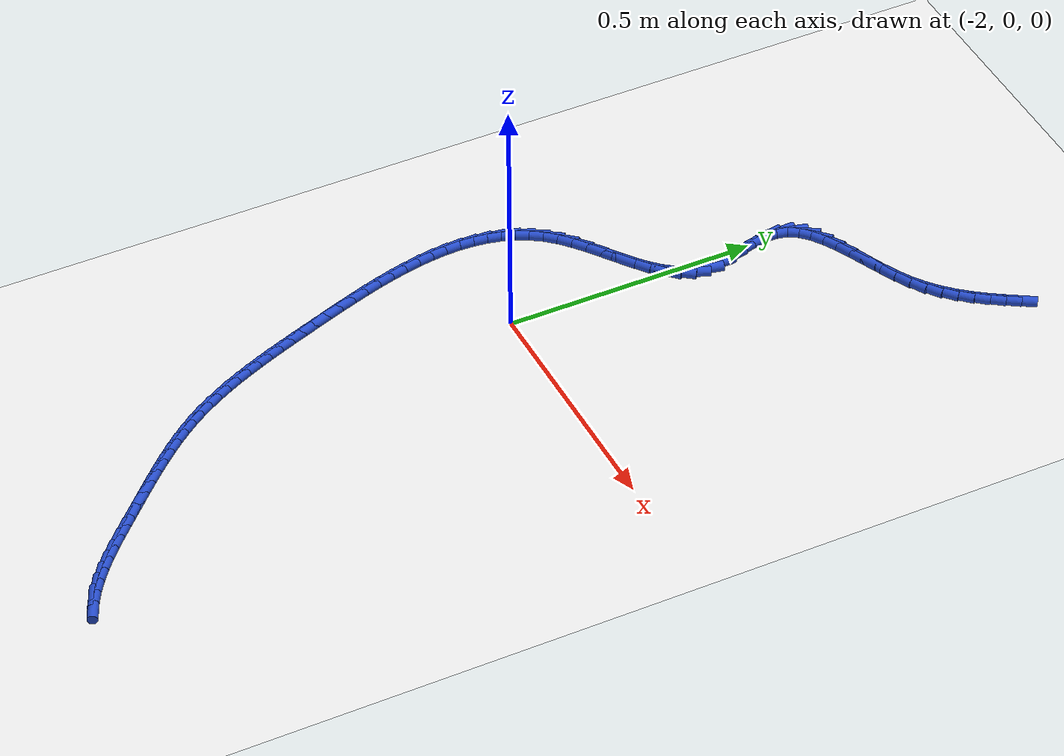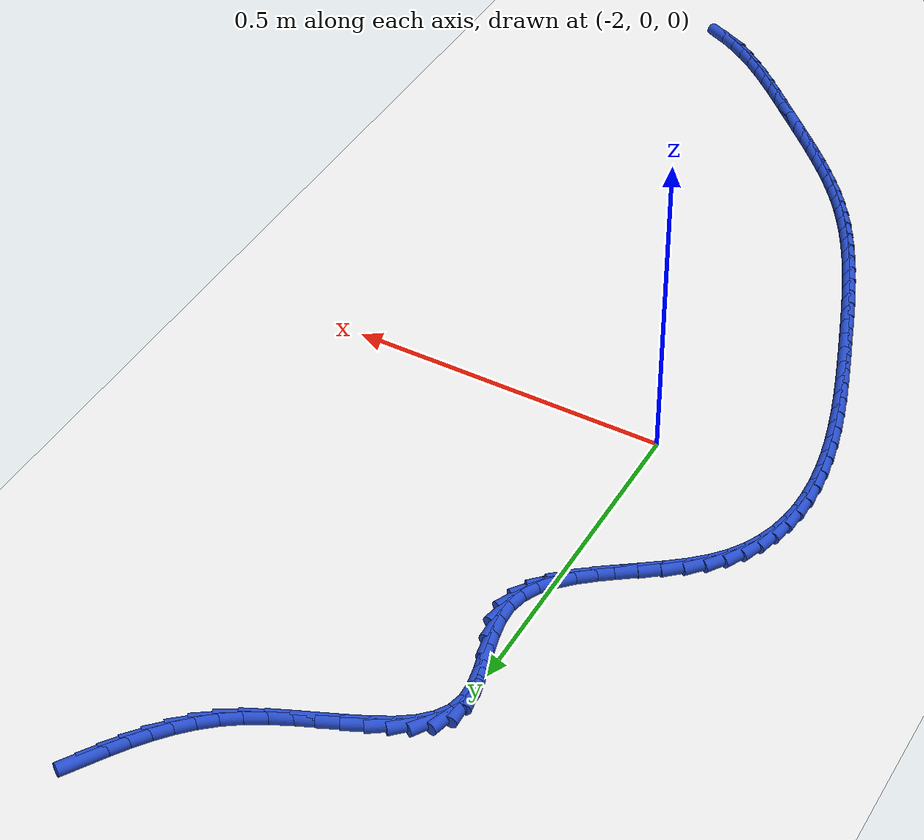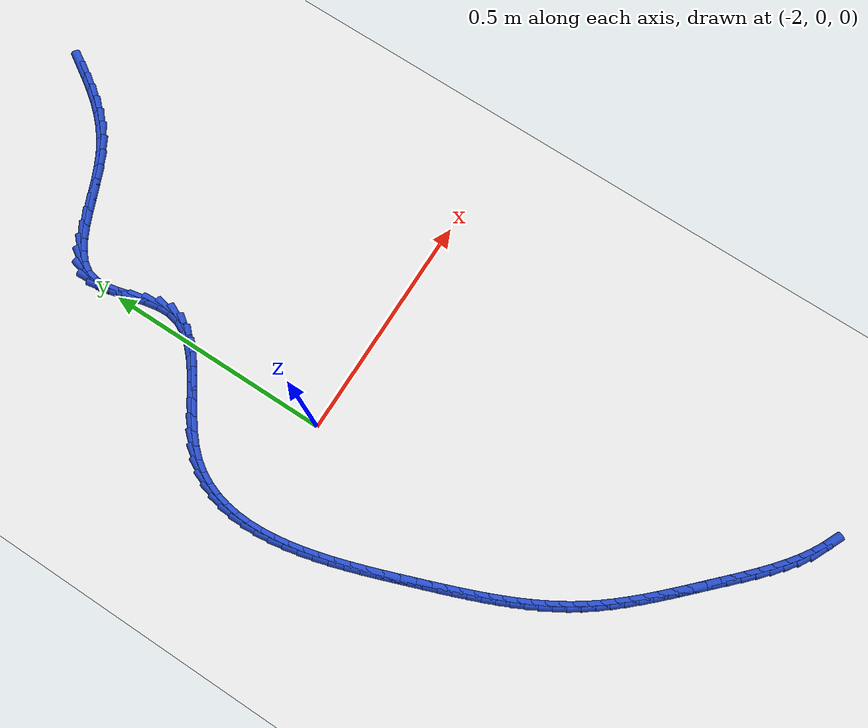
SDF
<sdf version="1.6">
 <world name="default">
  <model name="ground_plane">
   <static>1</static>
   <link name="link">
    <collision name="collision">
     <geometry><plane><normal>0 0 1</normal><size>100 100</size></plane></geometry>
     <surface><friction><ode><mu>100</mu><mu2>50</mu2></ode></friction></surface>
    </collision>
    <visual name="visual">
     <cast_shadows>0</cast_shadows>
     <geometry><plane><normal>0 0 1</normal><size>100 100</size></plane></geometry>
     <material>
      <script><uri>file://media/materials/scripts/gazebo.material</uri><name>Gazebo/WhiteGlow</name></script>
     </material>
    </visual>
   </link>
  </model>
  <model name="line">
   <link name="link_82">
    <pose>-1.6279180890156209 0.869579745719 0.01 0 1.57 1.011049204621194</pose>
    <collision name="collision">
     <geometry><cylinder><radius>0.01</radius><length>0.08</length></cylinder></geometry>
    </collision>
    <visual name="visual">
     <material>
      <script><name>Gazebo/Blue</name><uri>file://media/materials/scripts/gazebo.material</uri></script>
     </material>
     <geometry><cylinder><radius>0.01</radius><length>0.08</length></cylinder></geometry>
    </visual>
   </link>
   <link name="link_83">
    <pose>-1.6432467672207134 0.8451163817258963 0.01 0 1.57 0.9790400514282015</pose>
    <collision name="collision">
     <geometry><cylinder><radius>0.01</radius><length>0.08</length></cylinder></geometry>
    </collision>
    <visual name="visual">
     <material>
      <script><name>Gazebo/Blue</name><uri>file://media/materials/scripts/gazebo.material</uri></script>
     </material>
     <geometry><cylinder><radius>0.01</radius><length>0.08</length></cylinder></geometry>
    </visual>
   </link>
   <link name="link_84">
    <pose>-1.6593869749743249 0.821101869952232 0.01 0 1.57 0.9312530769918702</pose>
    <collision name="collision">
     <geometry><cylinder><radius>0.01</radius><length>0.08</length></cylinder></geometry>
    </collision>
    <visual name="visual">
     <material>
      <script><name>Gazebo/Blue</name><uri>file://media/materials/scripts/gazebo.material</uri></script>
     </material>
     <geometry><cylinder><radius>0.01</radius><length>0.08</length></cylinder></geometry>
    </visual>
   </link>
   <link name="link_85">
    <pose>-1.6767076726030397 0.797816170549223 0.01 0 1.57 0.8680049197908831</pose>
    <collision name="collision">
     <geometry><cylinder><radius>0.01</radius><length>0.08</length></cylinder></geometry>
    </collision>
    <visual name="visual">
     <material>
      <script><name>Gazebo/Blue</name><uri>file://media/materials/scripts/gazebo.material</uri></script>
     </material>
     <geometry><cylinder><radius>0.01</radius><length>0.08</length></cylinder></geometry>
    </visual>
   </link>
   <link name="link_86">
    <pose>-1.6955778204334413 0.7755392436680862 0.01 0 1.57 0.7901767619611942</pose>
    <collision name="collision">
     <geometry><cylinder><radius>0.01</radius><length>0.08</length></cylinder></geometry>
    </collision>
    <visual name="visual">
     <material>
      <script><name>Gazebo/Blue</name><uri>file://media/materials/scripts/gazebo.material</uri></script>
     </material>
     <geometry><cylinder><radius>0.01</radius><length>0.08</length></cylinder></geometry>
    </visual>
   </link>
   <link name="link_87">
    <pose>-1.7163663787921126 0.7545510494600375 0.01 0 1.57 0.6995667139545813</pose>
    <collision name="collision">
     <geometry><cylinder><radius>0.01</radius><length>0.08</length></cylinder></geometry>
    </collision>
    <visual name="visual">
     <material>
      <script><name>Gazebo/Blue</name><uri>file://media/materials/scripts/gazebo.material</uri></script>
     </material>
     <geometry><cylinder><radius>0.01</radius><length>0.08</length></cylinder></geometry>
    </visual>
   </link>
   <link name="link_88">
    <pose>-1.7394423080056378 0.7351315480762929 0.01 0 1.57 0.5991521676071688</pose>
    <collision name="collision">
     <geometry><cylinder><radius>0.01</radius><length>0.08</length></cylinder></geometry>
    </collision>
    <visual name="visual">
     <material>
      <script><name>Gazebo/Blue</name><uri>file://media/materials/scripts/gazebo.material</uri></script>
     </material>
     <geometry><cylinder><radius>0.01</radius><length>0.08</length></cylinder></geometry>
    </visual>
   </link>
   <link name="link_89">
    <pose>-1.765173363429295 0.7175599936609718 0.01 0 1.57 0.5044677012919855</pose>
    <collision name="collision">
     <geometry><cylinder><radius>0.01</radius><length>0.08</length></cylinder></geometry>
    </collision>
    <visual name="visual">
     <material>
      <script><name>Gazebo/Blue</name><uri>file://media/materials/scripts/gazebo.material</uri></script>
     </material>
     <geometry><cylinder><radius>0.01</radius><length>0.08</length></cylinder></geometry>
    </visual>
   </link>
   <link name="link_90">
    <pose>-1.7935483938738552 0.7018936344828248 0.01 0 1.57 0.44200977219773824</pose>
    <collision name="collision">
     <geometry><cylinder><radius>0.01</radius><length>0.08</length></cylinder></geometry>
    </collision>
    <visual name="visual">
     <material>
      <script><name>Gazebo/Blue</name><uri>file://media/materials/scripts/gazebo.material</uri></script>
     </material>
     <geometry><cylinder><radius>0.01</radius><length>0.08</length></cylinder></geometry>
    </visual>
   </link>
   <link name="link_91">
    <pose>-1.8236402483500371 0.6876530235742783 0.01 0 1.57 0.4102926782178785</pose>
    <collision name="collision">
     <geometry><cylinder><radius>0.01</radius><length>0.08</length></cylinder></geometry>
    </collision>
    <visual name="visual">
     <material>
      <script><name>Gazebo/Blue</name><uri>file://media/materials/scripts/gazebo.material</uri></script>
     </material>
     <geometry><cylinder><radius>0.01</radius><length>0.08</length></cylinder></geometry>
    </visual>
   </link>
   <link name="link_92">
    <pose>-1.8543860973522317 0.6742792183026068 0.01 0 1.57 0.40668284539883187</pose>
    <collision name="collision">
     <geometry><cylinder><radius>0.01</radius><length>0.08</length></cylinder></geometry>
    </collision>
    <visual name="visual">
     <material>
      <script><name>Gazebo/Blue</name><uri>file://media/materials/scripts/gazebo.material</uri></script>
     </material>
     <geometry><cylinder><radius>0.01</radius><length>0.08</length></cylinder></geometry>
    </visual>
   </link>
   <link name="link_93">
    <pose>-1.8847231113748313 0.6612132760350851 0.01 0 1.57 0.43225219540162824</pose>
    <collision name="collision">
     <geometry><cylinder><radius>0.01</radius><length>0.08</length></cylinder></geometry>
    </collision>
    <visual name="visual">
     <material>
      <script><name>Gazebo/Blue</name><uri>file://media/materials/scripts/gazebo.material</uri></script>
     </material>
     <geometry><cylinder><radius>0.01</radius><length>0.08</length></cylinder></geometry>
    </visual>
   </link>
   <link name="link_94">
    <pose>-1.9135884609122256 0.647896254138988 0.01 0 1.57 0.49243541087826104</pose>
    <collision name="collision">
     <geometry><cylinder><radius>0.01</radius><length>0.08</length></cylinder></geometry>
    </collision>
    <visual name="visual">
     <material>
      <script><name>Gazebo/Blue</name><uri>file://media/materials/scripts/gazebo.material</uri></script>
     </material>
     <geometry><cylinder><radius>0.01</radius><length>0.08</length></cylinder></geometry>
    </visual>
   </link>
   <link name="link_95">
    <pose>-1.939919316458808 0.6337692099815904 0.01 0 1.57 0.5982949726942012</pose>
    <collision name="collision">
     <geometry><cylinder><radius>0.01</radius><length>0.08</length></cylinder></geometry>
    </collision>
    <visual name="visual">
     <material>
      <script><name>Gazebo/Blue</name><uri>file://media/materials/scripts/gazebo.material</uri></script>
     </material>
     <geometry><cylinder><radius>0.01</radius><length>0.08</length></cylinder></geometry>
    </visual>
   </link>
   <link name="link_96">
    <pose>-1.962652848508969 0.6182732009301667 0.01 0 1.57 0.7671040932615691</pose>
    <collision name="collision">
     <geometry><cylinder><radius>0.01</radius><length>0.08</length></cylinder></geometry>
    </collision>
    <visual name="visual">
     <material>
      <script><name>Gazebo/Blue</name><uri>file://media/materials/scripts/gazebo.material</uri></script>
     </material>
     <geometry><cylinder><radius>0.01</radius><length>0.08</length></cylinder></geometry>
    </visual>
   </link>
   <link name="link_97">
    <pose>-1.9807262275571 0.600849284351992 0.01 0 1.57 1.0155930704207083</pose>
    <collision name="collision">
     <geometry><cylinder><radius>0.01</radius><length>0.08</length></cylinder></geometry>
    </collision>
    <visual name="visual">
     <material>
      <script><name>Gazebo/Blue</name><uri>file://media/materials/scripts/gazebo.material</uri></script>
     </material>
     <geometry><cylinder><radius>0.01</radius><length>0.08</length></cylinder></geometry>
    </visual>
   </link>
   <link name="link_98">
    <pose>-1.9930766240975926 0.5809385176143411 0.01 0 1.57 1.3324904883972646</pose>
    <collision name="collision">
     <geometry><cylinder><radius>0.01</radius><length>0.08</length></cylinder></geometry>
    </collision>
    <visual name="visual">
     <material>
      <script><name>Gazebo/Blue</name><uri>file://media/materials/scripts/gazebo.material</uri></script>
     </material>
     <geometry><cylinder><radius>0.01</radius><length>0.08</length></cylinder></geometry>
    </visual>
   </link>
   <link name="link_99">
    <pose>-1.998652090867722 0.5579868263235431 0.01 0 1.57 -1.5268364827842733</pose>
    <collision name="collision">
     <geometry><cylinder><radius>0.01</radius><length>0.08</length></cylinder></geometry>
    </collision>
    <visual name="visual">
     <material>
      <script><name>Gazebo/Blue</name><uri>file://media/materials/scripts/gazebo.material</uri></script>
     </material>
     <geometry><cylinder><radius>0.01</radius><length>0.08</length></cylinder></geometry>
    </visual>
   </link>
   <link name="link_100">
    <pose>-1.9975061031344952 0.5319346537316743 0.01 0 1.57 -1.3695810009826508</pose>
    <collision name="collision">
     <geometry><cylinder><radius>0.01</radius><length>0.08</length></cylinder></geometry>
    </collision>
    <visual name="visual">
     <material>
      <script><name>Gazebo/Blue</name><uri>file://media/materials/scripts/gazebo.material</uri></script>
     </material>
     <geometry><cylinder><radius>0.01</radius><length>0.08</length></cylinder></geometry>
    </visual>
   </link>
   <link name="link_101">
    <pose>-1.99173382849233 0.5036358068552858 0.01 0 1.57 -1.3041660278707365</pose>
    <collision name="collision">
     <geometry><cylinder><radius>0.01</radius><length>0.08</length></cylinder></geometry>
    </collision>
    <visual name="visual">
     <material>
      <script><name>Gazebo/Blue</name><uri>file://media/materials/scripts/gazebo.material</uri></script>
     </material>
     <geometry><cylinder><radius>0.01</radius><length>0.08</length></cylinder></geometry>
    </visual>
   </link>
   <link name="link_102">
    <pose>-1.9836509672510538 0.4740427493931471 0.01 0 1.57 -1.3072292698010541</pose>
    <collision name="collision">
     <geometry><cylinder><radius>0.01</radius><length>0.08</length></cylinder></geometry>
    </collision>
    <visual name="visual">
     <material>
      <script><name>Gazebo/Blue</name><uri>file://media/materials/scripts/gazebo.material</uri></script>
     </material>
     <geometry><cylinder><radius>0.01</radius><length>0.08</length></cylinder></geometry>
    </visual>
   </link>
   <link name="link_103">
    <pose>-1.9755732197204918 0.4441079450440279 0.01 0 1.57 -1.3769407790196884</pose>
    <collision name="collision">
     <geometry><cylinder><radius>0.01</radius><length>0.08</length></cylinder></geometry>
    </collision>
    <visual name="visual">
     <material>
      <script><name>Gazebo/Blue</name><uri>file://media/materials/scripts/gazebo.material</uri></script>
     </material>
     <geometry><cylinder><radius>0.01</radius><length>0.08</length></cylinder></geometry>
    </visual>
   </link>
   <link name="link_104">
    <pose>-1.969816286210471 0.4147838575066977 0.01 0 1.57 -1.5304586165356389</pose>
    <collision name="collision">
     <geometry><cylinder><radius>0.01</radius><length>0.08</length></cylinder></geometry>
    </collision>
    <visual name="visual">
     <material>
      <script><name>Gazebo/Blue</name><uri>file://media/materials/scripts/gazebo.material</uri></script>
     </material>
     <geometry><cylinder><radius>0.01</radius><length>0.08</length></cylinder></geometry>
    </visual>
   </link>
   <link name="link_105">
    <pose>-1.9686958670308168 0.387022950479927 0.01 0 1.57 1.3645613853543148</pose>
    <collision name="collision">
     <geometry><cylinder><radius>0.01</radius><length>0.08</length></cylinder></geometry>
    </collision>
    <visual name="visual">
     <material>
      <script><name>Gazebo/Blue</name><uri>file://media/materials/scripts/gazebo.material</uri></script>
     </material>
     <geometry><cylinder><radius>0.01</radius><length>0.08</length></cylinder></geometry>
    </visual>
   </link>
   <link name="link_106">
    <pose>-1.9740201502604877 0.36157341883219185 0.01 0 1.57 1.1173975946926331</pose>
    <collision name="collision">
     <geometry><cylinder><radius>0.01</radius><length>0.08</length></cylinder></geometry>
    </collision>
    <visual name="visual">
     <material>
      <script><name>Gazebo/Blue</name><uri>file://media/materials/scripts/gazebo.material</uri></script>
     </material>
     <geometry><cylinder><radius>0.01</radius><length>0.08</length></cylinder></geometry>
    </visual>
   </link>
   <link name="link_107">
    <pose>-1.9853671199275338 0.33828582158186304 0.01 0 1.57 0.9215506543724609</pose>
    <collision name="collision">
     <geometry><cylinder><radius>0.01</radius><length>0.08</length></cylinder></geometry>
    </collision>
    <visual name="visual">
     <material>
      <script><name>Gazebo/Blue</name><uri>file://media/materials/scripts/gazebo.material</uri></script>
     </material>
     <geometry><cylinder><radius>0.01</radius><length>0.08</length></cylinder></geometry>
    </visual>
   </link>
   <link name="link_108">
    <pose>-2.001702333135894 0.3167642217540728 0.01 0 1.57 0.7819993497353427</pose>
    <collision name="collision">
     <geometry><cylinder><radius>0.01</radius><length>0.08</length></cylinder></geometry>
    </collision>
    <visual name="visual">
     <material>
      <script><name>Gazebo/Blue</name><uri>file://media/materials/scripts/gazebo.material</uri></script>
     </material>
     <geometry><cylinder><radius>0.01</radius><length>0.08</length></cylinder></geometry>
    </visual>
   </link>
   <link name="link_109">
    <pose>-2.021991329824151 0.29661267546506287 0.01 0 1.57 0.6905833593760698</pose>
    <collision name="collision">
     <geometry><cylinder><radius>0.01</radius><length>0.08</length></cylinder></geometry>
    </collision>
    <visual name="visual">
     <material>
      <script><name>Gazebo/Blue</name><uri>file://media/materials/scripts/gazebo.material</uri></script>
     </material>
     <geometry><cylinder><radius>0.01</radius><length>0.08</length></cylinder></geometry>
    </visual>
   </link>
   <link name="link_110">
    <pose>-2.04519964993089 0.2774352388310743 0.01 0 1.57 0.637850507137567</pose>
    <collision name="collision">
     <geometry><cylinder><radius>0.01</radius><length>0.08</length></cylinder></geometry>
    </collision>
    <visual name="visual">
     <material>
      <script><name>Gazebo/Blue</name><uri>file://media/materials/scripts/gazebo.material</uri></script>
     </material>
     <geometry><cylinder><radius>0.01</radius><length>0.08</length></cylinder></geometry>
    </visual>
   </link>
   <link name="link_111">
    <pose>-2.0702928333946953 0.25883596796834824 0.01 0 1.57 0.6173316311956467</pose>
    <collision name="collision">
     <geometry><cylinder><radius>0.01</radius><length>0.08</length></cylinder></geometry>
    </collision>
    <visual name="visual">
     <material>
      <script><name>Gazebo/Blue</name><uri>file://media/materials/scripts/gazebo.material</uri></script>
     </material>
     <geometry><cylinder><radius>0.01</radius><length>0.08</length></cylinder></geometry>
    </visual>
   </link>
   <link name="link_112">
    <pose>-2.0962364201541503 0.24041891899312567 0.01 0 1.57 0.6261650329179839</pose>
    <collision name="collision">
     <geometry><cylinder><radius>0.01</radius><length>0.08</length></cylinder></geometry>
    </collision>
    <visual name="visual">
     <material>
      <script><name>Gazebo/Blue</name><uri>file://media/materials/scripts/gazebo.material</uri></script>
     </material>
     <geometry><cylinder><radius>0.01</radius><length>0.08</length></cylinder></geometry>
    </visual>
   </link>
   <link name="link_113">
    <pose>-2.1219959501478396 0.2217881480216483 0.01 0 1.57 0.6649155473846194</pose>
    <collision name="collision">
     <geometry><cylinder><radius>0.01</radius><length>0.08</length></cylinder></geometry>
    </collision>
    <visual name="visual">
     <material>
      <script><name>Gazebo/Blue</name><uri>file://media/materials/scripts/gazebo.material</uri></script>
     </material>
     <geometry><cylinder><radius>0.01</radius><length>0.08</length></cylinder></geometry>
    </visual>
   </link>
   <link name="link_114">
    <pose>-2.146536963314347 0.20254771117015716 0.01 0 1.57 0.7374266803353892</pose>
    <collision name="collision">
     <geometry><cylinder><radius>0.01</radius><length>0.08</length></cylinder></geometry>
    </collision>
    <visual name="visual">
     <material>
      <script><name>Gazebo/Blue</name><uri>file://media/materials/scripts/gazebo.material</uri></script>
     </material>
     <geometry><cylinder><radius>0.01</radius><length>0.08</length></cylinder></geometry>
    </visual>
   </link>
   <link name="link_115">
    <pose>-2.168824999592258 0.18230166455489308 0.01 0 1.57 0.8485494902345311</pose>
    <collision name="collision">
     <geometry><cylinder><radius>0.01</radius><length>0.08</length></cylinder></geometry>
    </collision>
    <visual name="visual">
     <material>
      <script><name>Gazebo/Blue</name><uri>file://media/materials/scripts/gazebo.material</uri></script>
     </material>
     <geometry><cylinder><radius>0.01</radius><length>0.08</length></cylinder></geometry>
    </visual>
   </link>
   <link name="link_116">
    <pose>-2.1878783864325877 0.16067591581489657 0.01 0 1.57 0.9785644876733143</pose>
    <collision name="collision">
     <geometry><cylinder><radius>0.01</radius><length>0.08</length></cylinder></geometry>
    </collision>
    <visual name="visual">
     <material>
      <script><name>Gazebo/Blue</name><uri>file://media/materials/scripts/gazebo.material</uri></script>
     </material>
     <geometry><cylinder><radius>0.01</radius><length>0.08</length></cylinder></geometry>
    </visual>
   </link>
   <link name="link_117">
    <pose>-2.2034135523251583 0.13758535326023874 0.01 0 1.57 1.106840789899906</pose>
    <collision name="collision">
     <geometry><cylinder><radius>0.01</radius><length>0.08</length></cylinder></geometry>
    </collision>
    <visual name="visual">
     <material>
      <script><name>Gazebo/Blue</name><uri>file://media/materials/scripts/gazebo.material</uri></script>
     </material>
     <geometry><cylinder><radius>0.01</radius><length>0.08</length></cylinder></geometry>
    </visual>
   </link>
   <link name="link_118">
    <pose>-2.2156409517980227 0.11314936851512554 0.01 0 1.57 1.2285654917621165</pose>
    <collision name="collision">
     <geometry><cylinder><radius>0.01</radius><length>0.08</length></cylinder></geometry>
    </collision>
    <visual name="visual">
     <material>
      <script><name>Gazebo/Blue</name><uri>file://media/materials/scripts/gazebo.material</uri></script>
     </material>
     <geometry><cylinder><radius>0.01</radius><length>0.08</length></cylinder></geometry>
    </visual>
   </link>
   <link name="link_119">
    <pose>-2.224781475984687 0.08749167346269238 0.01 0 1.57 1.3404465638724679</pose>
    <collision name="collision">
     <geometry><cylinder><radius>0.01</radius><length>0.08</length></cylinder></geometry>
    </collision>
    <visual name="visual">
     <material>
      <script><name>Gazebo/Blue</name><uri>file://media/materials/scripts/gazebo.material</uri></script>
     </material>
     <geometry><cylinder><radius>0.01</radius><length>0.08</length></cylinder></geometry>
    </visual>
   </link>
   <link name="link_120">
    <pose>-2.2310560160186563 0.06073597998607563 0.01 0 1.57 1.4406508251470882</pose>
    <collision name="collision">
     <geometry><cylinder><radius>0.01</radius><length>0.08</length></cylinder></geometry>
    </collision>
    <visual name="visual">
     <material>
      <script><name>Gazebo/Blue</name><uri>file://media/materials/scripts/gazebo.material</uri></script>
     </material>
     <geometry><cylinder><radius>0.01</radius><length>0.08</length></cylinder></geometry>
    </visual>
   </link>
   <link name="link_121">
    <pose>-2.2346854630334367 0.03300599996841083 0.01 0 1.57 1.528651187637639</pose>
    <collision name="collision">
     <geometry><cylinder><radius>0.01</radius><length>0.08</length></cylinder></geometry>
    </collision>
    <visual name="visual">
     <material>
      <script><name>Gazebo/Blue</name><uri>file://media/materials/scripts/gazebo.material</uri></script>
     </material>
     <geometry><cylinder><radius>0.01</radius><length>0.08</length></cylinder></geometry>
    </visual>
   </link>
   <link name="link_122">
    <pose>-2.2358907081625343 0.004425445292833721 0.01 0 1.57 -1.536754430792318</pose>
    <collision name="collision">
     <geometry><cylinder><radius>0.01</radius><length>0.08</length></cylinder></geometry>
    </collision>
    <visual name="visual">
     <material>
      <script><name>Gazebo/Blue</name><uri>file://media/materials/scripts/gazebo.material</uri></script>
     </material>
     <geometry><cylinder><radius>0.01</radius><length>0.08</length></cylinder></geometry>
    </visual>
   </link>
   <link name="link_123">
    <pose>-2.2348926425394535 -0.02488197215751997 0.01 0 1.57 -1.47147762716861</pose>
    <collision name="collision">
     <geometry><cylinder><radius>0.01</radius><length>0.08</length></cylinder></geometry>
    </collision>
    <visual name="visual">
     <material>
      <script><name>Gazebo/Blue</name><uri>file://media/materials/scripts/gazebo.material</uri></script>
     </material>
     <geometry><cylinder><radius>0.01</radius><length>0.08</length></cylinder></geometry>
    </visual>
   </link>
   <link name="link_124">
    <pose>-2.231912157297702 -0.05479254049951447 0.01 0 1.57 -1.416005968618529</pose>
    <collision name="collision">
     <geometry><cylinder><radius>0.01</radius><length>0.08</length></cylinder></geometry>
    </collision>
    <visual name="visual">
     <material>
      <script><name>Gazebo/Blue</name><uri>file://media/materials/scripts/gazebo.material</uri></script>
     </material>
     <geometry><cylinder><radius>0.01</radius><length>0.08</length></cylinder></geometry>
    </visual>
   </link>
   <link name="link_125">
    <pose>-2.227170143570784 -0.08518254785001489 0.01 0 1.57 -1.3692290806523615</pose>
    <collision name="collision">
     <geometry><cylinder><radius>0.01</radius><length>0.08</length></cylinder></geometry>
    </collision>
    <visual name="visual">
     <material>
      <script><name>Gazebo/Blue</name><uri>file://media/materials/scripts/gazebo.material</uri></script>
     </material>
     <geometry><cylinder><radius>0.01</radius><length>0.08</length></cylinder></geometry>
    </visual>
   </link>
   <link name="link_126">
    <pose>-2.220887492492205 -0.11592828232588373 0.01 0 1.57 -1.3301378090909775</pose>
    <collision name="collision">
     <geometry><cylinder><radius>0.01</radius><length>0.08</length></cylinder></geometry>
    </collision>
    <visual name="visual">
     <material>
      <script><name>Gazebo/Blue</name><uri>file://media/materials/scripts/gazebo.material</uri></script>
     </material>
     <geometry><cylinder><radius>0.01</radius><length>0.08</length></cylinder></geometry>
    </visual>
   </link>
   <link name="link_127">
    <pose>-2.2132850951954723 -0.1469060320439861 0.01 0 1.57 -1.2978724171570277</pose>
    <collision name="collision">
     <geometry><cylinder><radius>0.01</radius><length>0.08</length></cylinder></geometry>
    </collision>
    <visual name="visual">
     <material>
      <script><name>Gazebo/Blue</name><uri>file://media/materials/scripts/gazebo.material</uri></script>
     </material>
     <geometry><cylinder><radius>0.01</radius><length>0.08</length></cylinder></geometry>
    </visual>
   </link>
   <link name="link_128">
    <pose>-2.20458384281409 -0.17799208512118625 0.01 0 1.57 -1.271738339621242</pose>
    <collision name="collision">
     <geometry><cylinder><radius>0.01</radius><length>0.08</length></cylinder></geometry>
    </collision>
    <visual name="visual">
     <material>
      <script><name>Gazebo/Blue</name><uri>file://media/materials/scripts/gazebo.material</uri></script>
     </material>
     <geometry><cylinder><radius>0.01</radius><length>0.08</length></cylinder></geometry>
    </visual>
   </link>
   <link name="link_129">
    <pose>-2.1950046264815644 -0.20906272967434839 0.01 0 1.57 -1.2512068370098728</pose>
    <collision name="collision">
     <geometry><cylinder><radius>0.01</radius><length>0.08</length></cylinder></geometry>
    </collision>
    <visual name="visual">
     <material>
      <script><name>Gazebo/Blue</name><uri>file://media/materials/scripts/gazebo.material</uri></script>
     </material>
     <geometry><cylinder><radius>0.01</radius><length>0.08</length></cylinder></geometry>
    </visual>
   </link>
   <link name="link_130">
    <pose>-2.1847683373314015 -0.23999425382033676 0.01 0 1.57 -1.2359111582649984</pose>
    <collision name="collision">
     <geometry><cylinder><radius>0.01</radius><length>0.08</length></cylinder></geometry>
    </collision>
    <visual name="visual">
     <material>
      <script><name>Gazebo/Blue</name><uri>file://media/materials/scripts/gazebo.material</uri></script>
     </material>
     <geometry><cylinder><radius>0.01</radius><length>0.08</length></cylinder></geometry>
    </visual>
   </link>
   <link name="link_131">
    <pose>-2.1740958664971064 -0.2706629456760157 0.01 0 1.57 -1.2256445788606805</pose>
    <collision name="collision">
     <geometry><cylinder><radius>0.01</radius><length>0.08</length></cylinder></geometry>
    </collision>
    <visual name="visual">
     <material>
      <script><name>Gazebo/Blue</name><uri>file://media/materials/scripts/gazebo.material</uri></script>
     </material>
     <geometry><cylinder><radius>0.01</radius><length>0.08</length></cylinder></geometry>
    </visual>
   </link>
   <link name="link_132">
    <pose>-2.163208105112185 -0.3009450933582499 0.01 0 1.57 -1.2203596948818518</pose>
    <collision name="collision">
     <geometry><cylinder><radius>0.01</radius><length>0.08</length></cylinder></geometry>
    </collision>
    <visual name="visual">
     <material>
      <script><name>Gazebo/Blue</name><uri>file://media/materials/scripts/gazebo.material</uri></script>
     </material>
     <geometry><cylinder><radius>0.01</radius><length>0.08</length></cylinder></geometry>
    </visual>
   </link>
   <link name="link_133">
    <pose>-2.152325754725672 -0.3307170609872792 0.01 0 1.57 -1.2180859872389251</pose>
    <collision name="collision">
     <geometry><cylinder><radius>0.01</radius><length>0.08</length></cylinder></geometry>
    </collision>
    <visual name="visual">
     <material>
      <script><name>Gazebo/Blue</name><uri>file://media/materials/scripts/gazebo.material</uri></script>
     </material>
     <geometry><cylinder><radius>0.01</radius><length>0.08</length></cylinder></geometry>
    </visual>
   </link>
   <link name="link_134">
    <pose>-2.1415878632785113 -0.3598879471679495 0.01 0 1.57 -1.2134970590267722</pose>
    <collision name="collision">
     <geometry><cylinder><radius>0.01</radius><length>0.08</length></cylinder></geometry>
    </collision>
    <visual name="visual">
     <material>
      <script><name>Gazebo/Blue</name><uri>file://media/materials/scripts/gazebo.material</uri></script>
     </material>
     <geometry><cylinder><radius>0.01</radius><length>0.08</length></cylinder></geometry>
    </visual>
   </link>
   <link name="link_135">
    <pose>-2.130924815750143 -0.3884505023443859 0.01 0 1.57 -1.205593975198662</pose>
    <collision name="collision">
     <geometry><cylinder><radius>0.01</radius><length>0.08</length></cylinder></geometry>
    </collision>
    <visual name="visual">
     <material>
      <script><name>Gazebo/Blue</name><uri>file://media/materials/scripts/gazebo.material</uri></script>
     </material>
     <geometry><cylinder><radius>0.01</radius><length>0.08</length></cylinder></geometry>
    </visual>
   </link>
   <link name="link_136">
    <pose>-2.1202341429090397 -0.41641064803408356 0.01 0 1.57 -1.1942245451114477</pose>
    <collision name="collision">
     <geometry><cylinder><radius>0.01</radius><length>0.08</length></cylinder></geometry>
    </collision>
    <visual name="visual">
     <material>
      <script><name>Gazebo/Blue</name><uri>file://media/materials/scripts/gazebo.material</uri></script>
     </material>
     <geometry><cylinder><radius>0.01</radius><length>0.08</length></cylinder></geometry>
    </visual>
   </link>
   <link name="link_137">
    <pose>-2.109413375523674 -0.44377430575453747 0.01 0 1.57 -1.1792597507690914</pose>
    <collision name="collision">
     <geometry><cylinder><radius>0.01</radius><length>0.08</length></cylinder></geometry>
    </collision>
    <visual name="visual">
     <material>
      <script><name>Gazebo/Blue</name><uri>file://media/materials/scripts/gazebo.material</uri></script>
     </material>
     <geometry><cylinder><radius>0.01</radius><length>0.08</length></cylinder></geometry>
    </visual>
   </link>
   <link name="link_138">
    <pose>-2.09836004436252 -0.47054739702324283 0.01 0 1.57 -1.1606020896710691</pose>
    <collision name="collision">
     <geometry><cylinder><radius>0.01</radius><length>0.08</length></cylinder></geometry>
    </collision>
    <visual name="visual">
     <material>
      <script><name>Gazebo/Blue</name><uri>file://media/materials/scripts/gazebo.material</uri></script>
     </material>
     <geometry><cylinder><radius>0.01</radius><length>0.08</length></cylinder></geometry>
    </visual>
   </link>
   <link name="link_139">
    <pose>-2.08697168019405 -0.496735843357695 0.01 0 1.57 -1.1381956090635326</pose>
    <collision name="collision">
     <geometry><cylinder><radius>0.01</radius><length>0.08</length></cylinder></geometry>
    </collision>
    <visual name="visual">
     <material>
      <script><name>Gazebo/Blue</name><uri>file://media/materials/scripts/gazebo.material</uri></script>
     </material>
     <geometry><cylinder><radius>0.01</radius><length>0.08</length></cylinder></geometry>
    </visual>
   </link>
   <link name="link_140">
    <pose>-2.075145813786738 -0.5223455662753896 0.01 0 1.57 -1.1120373211926504</pose>
    <collision name="collision">
     <geometry><cylinder><radius>0.01</radius><length>0.08</length></cylinder></geometry>
    </collision>
    <visual name="visual">
     <material>
      <script><name>Gazebo/Blue</name><uri>file://media/materials/scripts/gazebo.material</uri></script>
     </material>
     <geometry><cylinder><radius>0.01</radius><length>0.08</length></cylinder></geometry>
    </visual>
   </link>
   <link name="link_141">
    <pose>-2.0627799759090566 -0.5473824872938204 0.01 0 1.57 -1.0821892940595308</pose>
    <collision name="collision">
     <geometry><cylinder><radius>0.01</radius><length>0.08</length></cylinder></geometry>
    </collision>
    <visual name="visual">
     <material>
      <script><name>Gazebo/Blue</name><uri>file://media/materials/scripts/gazebo.material</uri></script>
     </material>
     <geometry><cylinder><radius>0.01</radius><length>0.08</length></cylinder></geometry>
    </visual>
   </link>
   <link name="link_142">
    <pose>-2.049771697329478 -0.5718525279304831 0.01 0 1.57 -1.048790237399235</pose>
    <collision name="collision">
     <geometry><cylinder><radius>0.01</radius><length>0.08</length></cylinder></geometry>
    </collision>
    <visual name="visual">
     <material>
      <script><name>Gazebo/Blue</name><uri>file://media/materials/scripts/gazebo.material</uri></script>
     </material>
     <geometry><cylinder><radius>0.01</radius><length>0.08</length></cylinder></geometry>
    </visual>
   </link>
   <link name="link_143">
    <pose>-2.036018508816476 -0.5957616097028731 0.01 0 1.57 -1.01206493043932</pose>
    <collision name="collision">
     <geometry><cylinder><radius>0.01</radius><length>0.08</length></cylinder></geometry>
    </collision>
    <visual name="visual">
     <material>
      <script><name>Gazebo/Blue</name><uri>file://media/materials/scripts/gazebo.material</uri></script>
     </material>
     <geometry><cylinder><radius>0.01</radius><length>0.08</length></cylinder></geometry>
    </visual>
   </link>
   <link name="link_144">
    <pose>-2.021417941138524 -0.6191156541284856 0.01 0 1.57 -0.9723295062609408</pose>
    <collision name="collision">
     <geometry><cylinder><radius>0.01</radius><length>0.08</length></cylinder></geometry>
    </collision>
    <visual name="visual">
     <material>
      <script><name>Gazebo/Blue</name><uri>file://media/materials/scripts/gazebo.material</uri></script>
     </material>
     <geometry><cylinder><radius>0.01</radius><length>0.08</length></cylinder></geometry>
    </visual>
   </link>
   <link name="link_145">
    <pose>-2.0058675250640943 -0.6419205827248153 0.01 0 1.57 -0.9307494029101498</pose>
    <collision name="collision">
     <geometry><cylinder><radius>0.01</radius><length>0.08</length></cylinder></geometry>
    </collision>
    <visual name="visual">
     <material>
      <script><name>Gazebo/Blue</name><uri>file://media/materials/scripts/gazebo.material</uri></script>
     </material>
     <geometry><cylinder><radius>0.01</radius><length>0.08</length></cylinder></geometry>
    </visual>
   </link>
   <link name="link_146">
    <pose>-1.9892858604976813 -0.6641893059682433 0.01 0 1.57 -0.8926934173308061</pose>
    <collision name="collision">
     <geometry><cylinder><radius>0.01</radius><length>0.08</length></cylinder></geometry>
    </collision>
    <visual name="visual">
     <material>
      <script><name>Gazebo/Blue</name><uri>file://media/materials/scripts/gazebo.material</uri></script>
     </material>
     <geometry><cylinder><radius>0.01</radius><length>0.08</length></cylinder></geometry>
    </visual>
   </link>
   <link name="link_147">
    <pose>-1.9717318169298015 -0.6859812639303203 0.01 0 1.57 -0.8602102972965162</pose>
    <collision name="collision">
     <geometry><cylinder><radius>0.01</radius><length>0.08</length></cylinder></geometry>
    </collision>
    <visual name="visual">
     <material>
      <script><name>Gazebo/Blue</name><uri>file://media/materials/scripts/gazebo.material</uri></script>
     </material>
     <geometry><cylinder><radius>0.01</radius><length>0.08</length></cylinder></geometry>
    </visual>
   </link>
   <link name="link_148">
    <pose>-1.9533215603351046 -0.7073749028141942 0.01 0 1.57 -0.8331862144637768</pose>
    <collision name="collision">
     <geometry><cylinder><radius>0.01</radius><length>0.08</length></cylinder></geometry>
    </collision>
    <visual name="visual">
     <material>
      <script><name>Gazebo/Blue</name><uri>file://media/materials/scripts/gazebo.material</uri></script>
     </material>
     <geometry><cylinder><radius>0.01</radius><length>0.08</length></cylinder></geometry>
    </visual>
   </link>
   <link name="link_149">
    <pose>-1.934171426915513 -0.7284487252900389 0.01 0 1.57 -0.8114679571741837</pose>
    <collision name="collision">
     <geometry><cylinder><radius>0.01</radius><length>0.08</length></cylinder></geometry>
    </collision>
    <visual name="visual">
     <material>
      <script><name>Gazebo/Blue</name><uri>file://media/materials/scripts/gazebo.material</uri></script>
     </material>
     <geometry><cylinder><radius>0.01</radius><length>0.08</length></cylinder></geometry>
    </visual>
   </link>
   <link name="link_150">
    <pose>-1.914397752872948 -0.7492812340280276 0.01 0 1.57 -0.7948927190240226</pose>
    <collision name="collision">
     <geometry><cylinder><radius>0.01</radius><length>0.08</length></cylinder></geometry>
    </collision>
    <visual name="visual">
     <material>
      <script><name>Gazebo/Blue</name><uri>file://media/materials/scripts/gazebo.material</uri></script>
     </material>
     <geometry><cylinder><radius>0.01</radius><length>0.08</length></cylinder></geometry>
    </visual>
   </link>
   <link name="link_151">
    <pose>-1.8941168744093313 -0.7699509316983332 0.01 0 1.57 -0.7833050155859862</pose>
    <collision name="collision">
     <geometry><cylinder><radius>0.01</radius><length>0.08</length></cylinder></geometry>
    </collision>
    <visual name="visual">
     <material>
      <script><name>Gazebo/Blue</name><uri>file://media/materials/scripts/gazebo.material</uri></script>
     </material>
     <geometry><cylinder><radius>0.01</radius><length>0.08</length></cylinder></geometry>
    </visual>
   </link>
   <link name="link_152">
    <pose>-1.8734451277265844 -0.7905363209711291 0.01 0 1.57 -0.7765678681619193</pose>
    <collision name="collision">
     <geometry><cylinder><radius>0.01</radius><length>0.08</length></cylinder></geometry>
    </collision>
    <visual name="visual">
     <material>
      <script><name>Gazebo/Blue</name><uri>file://media/materials/scripts/gazebo.material</uri></script>
     </material>
     <geometry><cylinder><radius>0.01</radius><length>0.08</length></cylinder></geometry>
    </visual>
   </link>
   <link name="link_153">
    <pose>-1.8524988490266288 -0.8111159045165884 0.01 0 1.57 -0.7745693441678101</pose>
    <collision name="collision">
     <geometry><cylinder><radius>0.01</radius><length>0.08</length></cylinder></geometry>
    </collision>
    <visual name="visual">
     <material>
      <script><name>Gazebo/Blue</name><uri>file://media/materials/scripts/gazebo.material</uri></script>
     </material>
     <geometry><cylinder><radius>0.01</radius><length>0.08</length></cylinder></geometry>
    </visual>
   </link>
   <link name="link_154">
    <pose>-1.8313943745113868 -0.8317681850048841 0.01 0 1.57 -0.7751602030932405</pose>
    <collision name="collision">
     <geometry><cylinder><radius>0.01</radius><length>0.08</length></cylinder></geometry>
    </collision>
    <visual name="visual">
     <material>
      <script><name>Gazebo/Blue</name><uri>file://media/materials/scripts/gazebo.material</uri></script>
     </material>
     <geometry><cylinder><radius>0.01</radius><length>0.08</length></cylinder></geometry>
    </visual>
   </link>
   <link name="link_155">
    <pose>-1.8102153462021224 -0.8525179331664792 0.01 0 1.57 -0.7690095257386705</pose>
    <collision name="collision">
     <geometry><cylinder><radius>0.01</radius><length>0.08</length></cylinder></geometry>
    </collision>
    <visual name="visual">
     <material>
      <script><name>Gazebo/Blue</name><uri>file://media/materials/scripts/gazebo.material</uri></script>
     </material>
     <geometry><cylinder><radius>0.01</radius><length>0.08</length></cylinder></geometry>
    </visual>
   </link>
   <link name="link_156">
    <pose>-1.788898037814718 -0.8731477241869057 0.01 0 1.57 -0.7534210984081048</pose>
    <collision name="collision">
     <geometry><cylinder><radius>0.01</radius><length>0.08</length></cylinder></geometry>
    </collision>
    <visual name="visual">
     <material>
      <script><name>Gazebo/Blue</name><uri>file://media/materials/scripts/gazebo.material</uri></script>
     </material>
     <geometry><cylinder><radius>0.01</radius><length>0.08</length></cylinder></geometry>
    </visual>
   </link>
   <link name="link_157">
    <pose>-1.7673372199989181 -0.8933719241636374 0.01 0 1.57 -0.7281143154018962</pose>
    <collision name="collision">
     <geometry><cylinder><radius>0.01</radius><length>0.08</length></cylinder></geometry>
    </collision>
    <visual name="visual">
     <material>
      <script><name>Gazebo/Blue</name><uri>file://media/materials/scripts/gazebo.material</uri></script>
     </material>
     <geometry><cylinder><radius>0.01</radius><length>0.08</length></cylinder></geometry>
    </visual>
   </link>
   <link name="link_158">
    <pose>-1.745427661080204 -0.9129048953742877 0.01 0 1.57 -0.6926188463626537</pose>
    <collision name="collision">
     <geometry><cylinder><radius>0.01</radius><length>0.08</length></cylinder></geometry>
    </collision>
    <visual name="visual">
     <material>
      <script><name>Gazebo/Blue</name><uri>file://media/materials/scripts/gazebo.material</uri></script>
     </material>
     <geometry><cylinder><radius>0.01</radius><length>0.08</length></cylinder></geometry>
    </visual>
   </link>
   <link name="link_159">
    <pose>-1.7230641293840563 -0.9314610000964693 0.01 0 1.57 -0.6463303041481607</pose>
    <collision name="collision">
     <geometry><cylinder><radius>0.01</radius><length>0.08</length></cylinder></geometry>
    </collision>
    <visual name="visual">
     <material>
      <script><name>Gazebo/Blue</name><uri>file://media/materials/scripts/gazebo.material</uri></script>
     </material>
     <geometry><cylinder><radius>0.01</radius><length>0.08</length></cylinder></geometry>
    </visual>
   </link>
   <link name="link_160">
    <pose>-1.7001413932359564 -0.9487546006077953 0.01 0 1.57 -0.5886092509894194</pose>
    <collision name="collision">
     <geometry><cylinder><radius>0.01</radius><length>0.08</length></cylinder></geometry>
    </collision>
    <visual name="visual">
     <material>
      <script><name>Gazebo/Blue</name><uri>file://media/materials/scripts/gazebo.material</uri></script>
     </material>
     <geometry><cylinder><radius>0.01</radius><length>0.08</length></cylinder></geometry>
    </visual>
   </link>
   <link name="link_161">
    <pose>-1.676554220961385 -0.9645000591858783 0.01 0 1.57 -0.5189444386583706</pose>
    <collision name="collision">
     <geometry><cylinder><radius>0.01</radius><length>0.08</length></cylinder></geometry>
    </collision>
    <visual name="visual">
     <material>
      <script><name>Gazebo/Blue</name><uri>file://media/materials/scripts/gazebo.material</uri></script>
     </material>
     <geometry><cylinder><radius>0.01</radius><length>0.08</length></cylinder></geometry>
    </visual>
   </link>
   <link name="link_162">
    <pose>-1.6521973808858232 -0.9784117381083325 0.01 0 1.57 -0.43719491216383577</pose>
    <collision name="collision">
     <geometry><cylinder><radius>0.01</radius><length>0.08</length></cylinder></geometry>
    </collision>
    <visual name="visual">
     <material>
      <script><name>Gazebo/Blue</name><uri>file://media/materials/scripts/gazebo.material</uri></script>
     </material>
     <geometry><cylinder><radius>0.01</radius><length>0.08</length></cylinder></geometry>
    </visual>
   </link>
  </model>
 </world>
</sdf>
